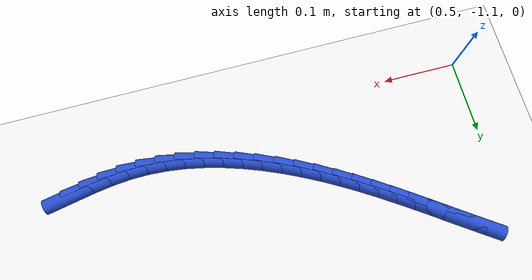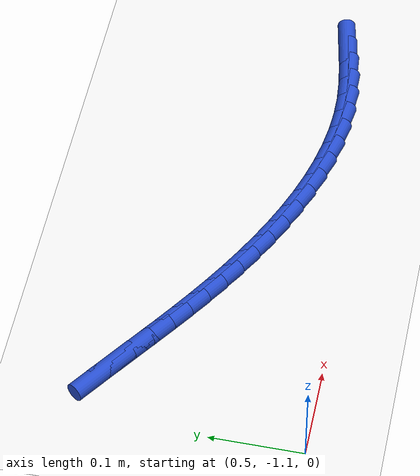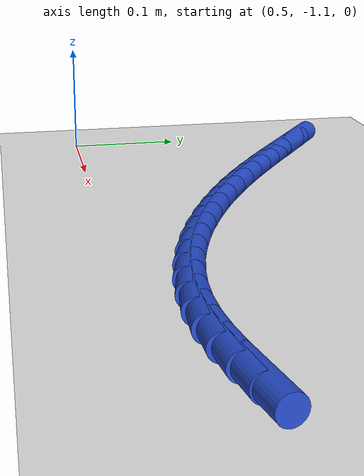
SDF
<sdf version="1.6">
 <world name="default">
  <model name="ground_plane">
   <static>1</static>
   <link name="link">
    <collision name="collision">
     <geometry><plane><normal>0 0 1</normal><size>100 100</size></plane></geometry>
     <surface><friction><ode><mu>100</mu><mu2>50</mu2></ode></friction></surface>
    </collision>
    <visual name="visual">
     <cast_shadows>0</cast_shadows>
     <geometry><plane><normal>0 0 1</normal><size>100 100</size></plane></geometry>
     <material>
      <script><uri>file://media/materials/scripts/gazebo.material</uri><name>Gazebo/WhiteGlow</name></script>
     </material>
    </visual>
   </link>
  </model>
  <model name="line">
   <link name="link_196">
    <pose>1.0448236681320964 -1.051589649763091 0.01 0 1.57 0.18828049040109998</pose>
    <collision name="collision">
     <geometry><cylinder><radius>0.01</radius><length>0.08</length></cylinder></geometry>
    </collision>
    <visual name="visual">
     <material>
      <script><name>Gazebo/Blue</name><uri>file://media/materials/scripts/gazebo.material</uri></script>
     </material>
     <geometry><cylinder><radius>0.01</radius><length>0.08</length></cylinder></geometry>
    </visual>
   </link>
   <link name="link_197">
    <pose>1.0197650216307736 -1.056364257017769 0.01 0 1.57 0.1473911847333854</pose>
    <collision name="collision">
     <geometry><cylinder><radius>0.01</radius><length>0.08</length></cylinder></geometry>
    </collision>
    <visual name="visual">
     <material>
      <script><name>Gazebo/Blue</name><uri>file://media/materials/scripts/gazebo.material</uri></script>
     </material>
     <geometry><cylinder><radius>0.01</radius><length>0.08</length></cylinder></geometry>
    </visual>
   </link>
   <link name="link_198">
    <pose>0.9946975065625863 -1.0600859772918314 0.01 0 1.57 0.08659042297557501</pose>
    <collision name="collision">
     <geometry><cylinder><radius>0.01</radius><length>0.08</length></cylinder></geometry>
    </collision>
    <visual name="visual">
     <material>
      <script><name>Gazebo/Blue</name><uri>file://media/materials/scripts/gazebo.material</uri></script>
     </material>
     <geometry><cylinder><radius>0.01</radius><length>0.08</length></cylinder></geometry>
    </visual>
   </link>
   <link name="link_199">
    <pose>0.9695983535877779 -1.062264771750134 0.01 0 1.57 0.009079636847449736</pose>
    <collision name="collision">
     <geometry><cylinder><radius>0.01</radius><length>0.08</length></cylinder></geometry>
    </collision>
    <visual name="visual">
     <material>
      <script><name>Gazebo/Blue</name><uri>file://media/materials/scripts/gazebo.material</uri></script>
     </material>
     <geometry><cylinder><radius>0.01</radius><length>0.08</length></cylinder></geometry>
    </visual>
   </link>
   <link name="link_200">
    <pose>0.9444549261723202 -1.0624930712138554 0.01 0 1.57 -0.06801197807901176</pose>
    <collision name="collision">
     <geometry><cylinder><radius>0.01</radius><length>0.08</length></cylinder></geometry>
    </collision>
    <visual name="visual">
     <material>
      <script><name>Gazebo/Blue</name><uri>file://media/materials/scripts/gazebo.material</uri></script>
     </material>
     <geometry><cylinder><radius>0.01</radius><length>0.08</length></cylinder></geometry>
    </visual>
   </link>
   <link name="link_201">
    <pose>0.9193057839900182 -1.0607799861267104 0.01 0 1.57 -0.13909756863777661</pose>
    <collision name="collision">
     <geometry><cylinder><radius>0.01</radius><length>0.08</length></cylinder></geometry>
    </collision>
    <visual name="visual">
     <material>
      <script><name>Gazebo/Blue</name><uri>file://media/materials/scripts/gazebo.material</uri></script>
     </material>
     <geometry><cylinder><radius>0.01</radius><length>0.08</length></cylinder></geometry>
    </visual>
   </link>
   <link name="link_202">
    <pose>0.8942056184714672 -1.0572659213117255 0.01 0 1.57 -0.20412933652451062</pose>
    <collision name="collision">
     <geometry><cylinder><radius>0.01</radius><length>0.08</length></cylinder></geometry>
    </collision>
    <visual name="visual">
     <material>
      <script><name>Gazebo/Blue</name><uri>file://media/materials/scripts/gazebo.material</uri></script>
     </material>
     <geometry><cylinder><radius>0.01</radius><length>0.08</length></cylinder></geometry>
    </visual>
   </link>
   <link name="link_203">
    <pose>0.8692091270792586 -1.0520913306855888 0.01 0 1.57 -0.2632753724872409</pose>
    <collision name="collision">
     <geometry><cylinder><radius>0.01</radius><length>0.08</length></cylinder></geometry>
    </collision>
    <visual name="visual">
     <material>
      <script><name>Gazebo/Blue</name><uri>file://media/materials/scripts/gazebo.material</uri></script>
     </material>
     <geometry><cylinder><radius>0.01</radius><length>0.08</length></cylinder></geometry>
    </visual>
   </link>
   <link name="link_204">
    <pose>0.8443710072759821 -1.0453966681649869 0.01 0 1.57 -0.3168425762253742</pose>
    <collision name="collision">
     <geometry><cylinder><radius>0.01</radius><length>0.08</length></cylinder></geometry>
    </collision>
    <visual name="visual">
     <material>
      <script><name>Gazebo/Blue</name><uri>file://media/materials/scripts/gazebo.material</uri></script>
     </material>
     <geometry><cylinder><radius>0.01</radius><length>0.08</length></cylinder></geometry>
    </visual>
   </link>
   <link name="link_205">
    <pose>0.81974595652423 -1.0373223876666073 0.01 0 1.57 -0.3652145341107772</pose>
    <collision name="collision">
     <geometry><cylinder><radius>0.01</radius><length>0.08</length></cylinder></geometry>
    </collision>
    <visual name="visual">
     <material>
      <script><name>Gazebo/Blue</name><uri>file://media/materials/scripts/gazebo.material</uri></script>
     </material>
     <geometry><cylinder><radius>0.01</radius><length>0.08</length></cylinder></geometry>
    </visual>
   </link>
   <link name="link_206">
    <pose>0.795388672286592 -1.0280089431071378 0.01 0 1.57 -0.40880504753285507</pose>
    <collision name="collision">
     <geometry><cylinder><radius>0.01</radius><length>0.08</length></cylinder></geometry>
    </collision>
    <visual name="visual">
     <material>
      <script><name>Gazebo/Blue</name><uri>file://media/materials/scripts/gazebo.material</uri></script>
     </material>
     <geometry><cylinder><radius>0.01</radius><length>0.08</length></cylinder></geometry>
    </visual>
   </link>
   <link name="link_207">
    <pose>0.7713538520256591 -1.0175967884032644 0.01 0 1.57 -0.44802605330034645</pose>
    <collision name="collision">
     <geometry><cylinder><radius>0.01</radius><length>0.08</length></cylinder></geometry>
    </collision>
    <visual name="visual">
     <material>
      <script><name>Gazebo/Blue</name><uri>file://media/materials/scripts/gazebo.material</uri></script>
     </material>
     <geometry><cylinder><radius>0.01</radius><length>0.08</length></cylinder></geometry>
    </visual>
   </link>
   <link name="link_208">
    <pose>0.7476961932040218 -1.0062263774716755 0.01 0 1.57 -0.48326702570062197</pose>
    <collision name="collision">
     <geometry><cylinder><radius>0.01</radius><length>0.08</length></cylinder></geometry>
    </collision>
    <visual name="visual">
     <material>
      <script><name>Gazebo/Blue</name><uri>file://media/materials/scripts/gazebo.material</uri></script>
     </material>
     <geometry><cylinder><radius>0.01</radius><length>0.08</length></cylinder></geometry>
    </visual>
   </link>
   <link name="link_209">
    <pose>0.7244703932842707 -0.9940381642290574 0.01 0 1.57 -0.5148826774893519</pose>
    <collision name="collision">
     <geometry><cylinder><radius>0.01</radius><length>0.08</length></cylinder></geometry>
    </collision>
    <visual name="visual">
     <material>
      <script><name>Gazebo/Blue</name><uri>file://media/materials/scripts/gazebo.material</uri></script>
     </material>
     <geometry><cylinder><radius>0.01</radius><length>0.08</length></cylinder></geometry>
    </visual>
   </link>
   <link name="link_210">
    <pose>0.7017311497289966 -0.9811726025920982 0.01 0 1.57 -0.5431237331591414</pose>
    <collision name="collision">
     <geometry><cylinder><radius>0.01</radius><length>0.08</length></cylinder></geometry>
    </collision>
    <visual name="visual">
     <material>
      <script><name>Gazebo/Blue</name><uri>file://media/materials/scripts/gazebo.material</uri></script>
     </material>
     <geometry><cylinder><radius>0.01</radius><length>0.08</length></cylinder></geometry>
    </visual>
   </link>
   <link name="link_211">
    <pose>0.6795262099056619 -0.9677678414125204 0.01 0 1.57 -0.567381480110101</pose>
    <collision name="collision">
     <geometry><cylinder><radius>0.01</radius><length>0.08</length></cylinder></geometry>
    </collision>
    <visual name="visual">
     <material>
      <script><name>Gazebo/Blue</name><uri>file://media/materials/scripts/gazebo.material</uri></script>
     </material>
     <geometry><cylinder><radius>0.01</radius><length>0.08</length></cylinder></geometry>
    </visual>
   </link>
   <link name="link_212">
    <pose>0.6578183522502433 -0.9539338487900774 0.01 0 1.57 -0.5869904532751138</pose>
    <collision name="collision">
     <geometry><cylinder><radius>0.01</radius><length>0.08</length></cylinder></geometry>
    </collision>
    <visual name="visual">
     <material>
      <script><name>Gazebo/Blue</name><uri>file://media/materials/scripts/gazebo.material</uri></script>
     </material>
     <geometry><cylinder><radius>0.01</radius><length>0.08</length></cylinder></geometry>
    </visual>
   </link>
   <link name="link_213">
    <pose>0.6365134871400706 -0.9397617319935352 0.01 0 1.57 -0.6017709536545967</pose>
    <collision name="collision">
     <geometry><cylinder><radius>0.01</radius><length>0.08</length></cylinder></geometry>
    </collision>
    <visual name="visual">
     <material>
      <script><name>Gazebo/Blue</name><uri>file://media/materials/scripts/gazebo.material</uri></script>
     </material>
     <geometry><cylinder><radius>0.01</radius><length>0.08</length></cylinder></geometry>
    </visual>
   </link>
   <link name="link_214">
    <pose>0.615516480673052 -0.9253422519464871 0.01 0 1.57 -0.6116000305276938</pose>
    <collision name="collision">
     <geometry><cylinder><radius>0.01</radius><length>0.08</length></cylinder></geometry>
    </collision>
    <visual name="visual">
     <material>
      <script><name>Gazebo/Blue</name><uri>file://media/materials/scripts/gazebo.material</uri></script>
     </material>
     <geometry><cylinder><radius>0.01</radius><length>0.08</length></cylinder></geometry>
    </visual>
   </link>
   <link name="link_215">
    <pose>0.5947321989470943 -0.9107661695725253 0.01 0 1.57 -0.6163941642507276</pose>
    <collision name="collision">
     <geometry><cylinder><radius>0.01</radius><length>0.08</length></cylinder></geometry>
    </collision>
    <visual name="visual">
     <material>
      <script><name>Gazebo/Blue</name><uri>file://media/materials/scripts/gazebo.material</uri></script>
     </material>
     <geometry><cylinder><radius>0.01</radius><length>0.08</length></cylinder></geometry>
    </visual>
   </link>
   <link name="link_216">
    <pose>0.5740655080601044 -0.8961242457952421 0.01 0 1.57 -0.6161035442258692</pose>
    <collision name="collision">
     <geometry><cylinder><radius>0.01</radius><length>0.08</length></cylinder></geometry>
    </collision>
    <visual name="visual">
     <material>
      <script><name>Gazebo/Blue</name><uri>file://media/materials/scripts/gazebo.material</uri></script>
     </material>
     <geometry><cylinder><radius>0.01</radius><length>0.08</length></cylinder></geometry>
    </visual>
   </link>
   <link name="link_217">
    <pose>0.5534212741099895 -0.8815072415382299 0.01 0 1.57 -0.6107093183386892</pose>
    <collision name="collision">
     <geometry><cylinder><radius>0.01</radius><length>0.08</length></cylinder></geometry>
    </collision>
    <visual name="visual">
     <material>
      <script><name>Gazebo/Blue</name><uri>file://media/materials/scripts/gazebo.material</uri></script>
     </material>
     <geometry><cylinder><radius>0.01</radius><length>0.08</length></cylinder></geometry>
    </visual>
   </link>
  </model>
 </world>
</sdf>
